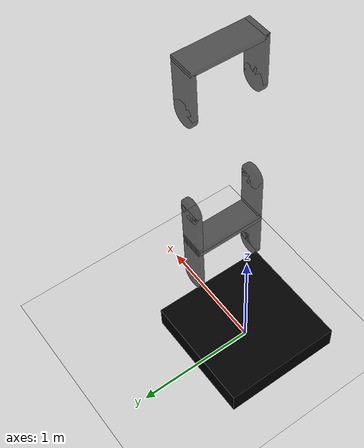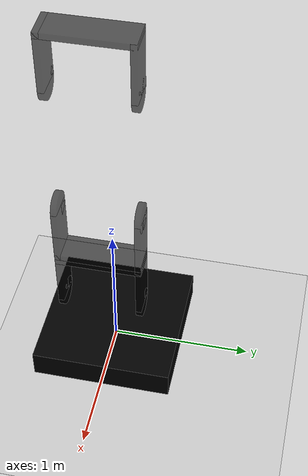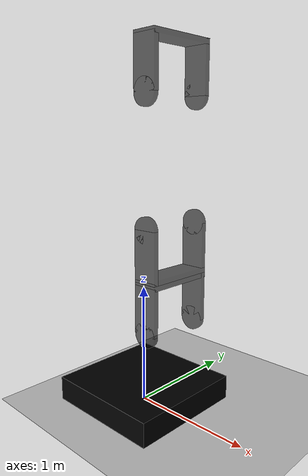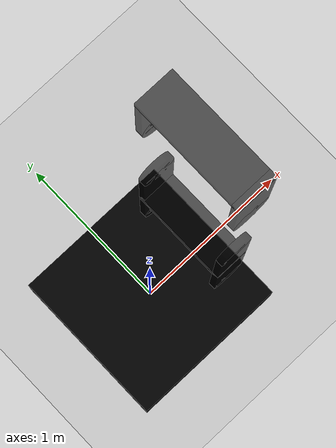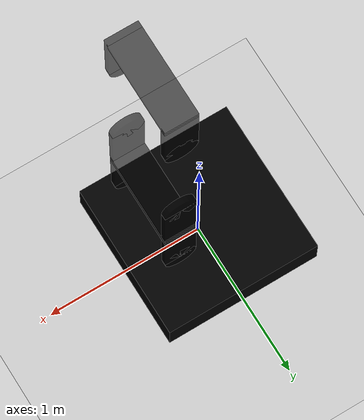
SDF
<?xml version="1.0" ?>
<sdf version="1.5">
  <world name="default">
    <!-- A global light source -->
    <include>
      <uri>model://sun</uri>
    </include>
    <!-- A ground plane -->
    <include>
      <uri>model://ground_plane</uri>
    </include>

    <!-- A testing model that includes the robotic arm model -->
    <model name="my_robot">
      <include>
        <uri>model://my_robot</uri>
      </include>

      <!-- Attach the plugin to this model -->
      <plugin name="roboarm_control" filename="libroboarm_plugin.so"/>
    </model>

  </world>
</sdf>

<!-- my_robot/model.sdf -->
<sdf version='1.4'>
  <model name="my_robot">
    <static>false</static>

    <link name='base'>
      <pose>0 0 0.1 0 0 0</pose>
      <inertial>
        <mass>1000</mass>
      </inertial>
      <!-- Main body shape and collision -->
      <collision name='collision'>
        <geometry>
          <box>
            <size>1 1 0.2</size>
          </box>
        </geometry>
      </collision>

      <visual name='visual'>
        <geometry>
          <box>
            <size>1 1 0.2</size>
          </box>
        </geometry>
        <material>
          <ambient>0 0 0 1</ambient>
        </material>
      </visual>
    </link>

    <!-- Add first bottom single servo -->
    <include>
      <uri>model://servo_single_joint</uri>
      <name>single_servo_0</name>
      <pose>0.2 0 0.4 0 0 0</pose>
    </include>
    <joint name="servo_single_0_joint" type="fixed">
      <child>single_servo_0::chassis</child>
      <parent>base</parent>
    </joint>

    <!-- Add first bottom double servo -->
    <include>
      <uri>model://servo_double_joint</uri>
      <name>double_servo_0</name>
      <pose>0.3 0 0.75 1.57 0 3.15</pose>
    </include>
    <joint name="servo_single_0_servo_double_0_joint" type="fixed">
      <child>double_servo_0::chassis</child>
      <parent>single_servo_0::holder</parent>
    </joint>

    <!-- Add double servo bracket -->
    <include>
      <uri>model://servo_connection_bracket</uri>
      <name>bracket_0</name>      <!-- Add name to make multiple add possible -->
      <!--
          0.75 =
          0.2 is base size
        + 0.4 is first servo size
        + 0.05 is first servo holder size
        + 0.1 is 1/2 of second servo horizontal size
        -->
      <pose>0.3 0 0.75 1.57 -1.57 0</pose>
    </include>
    <joint name="servo_double_0_bracket_0_joint" type="fixed">
      <child>bracket_0::bracket</child>
      <parent>double_servo_0::holder</parent>
    </joint>
    <include>
      <uri>model://servo_connection_bracket</uri>
      <name>bracket_1</name>      <!-- Add name to make multiple add possible -->
      <pose>0.3 0 1.55 1.57 1.57 0</pose>
    </include>
    <joint name="bracket_0_bracket_1_joint" type="fixed">
      <child>bracket_1::bracket</child>
      <parent>bracket_0::bracket</parent>
    </joint>

    <!-- Add double servo at the bracket end -->
    <include>
      <uri>model://servo_double_joint</uri>
      <name>double_servo_1</name>
      <pose>0.3 0 1.55 1.57 4.71 0</pose>
    </include>
    <joint name="servo_double_1_bracket_1_joint" type="fixed">
      <child>double_servo_1::holder</child>
      <parent>bracket_1::bracket</parent>
    </joint>

    <!-- Add pipe connector -->
    <include>
      <uri>model://servo_connection_pipe</uri>
      <name>pipe_0</name>
      <pose>0.3 0 2.03 0 0 0</pose>
    </include>
    <joint name="servo_double_1_pipe_0_joint" type="fixed">
      <child>pipe_0::pipe</child>
      <parent>double_servo_1::chassis</parent>
    </joint>

    <!-- Add double servo at the pipe connector end -->
    <include>
      <uri>model://servo_double_joint</uri>
      <name>double_servo_2</name>
      <pose>0.3 0 2.51 1.57 4.71 0</pose>
    </include>
    <joint name="pipe_0_servo_double_2_joint" type="fixed">
      <child>double_servo_2::chassis</child>
      <parent>pipe_0::pipe</parent>
    </joint>

    <!-- Add double servo bracket -->
    <include>
      <uri>model://servo_connection_bracket</uri>
      <name>bracket_2</name>
      <pose>0.3 0 2.51 1.57 -1.57 0</pose>
    </include>
    <joint name="servo_double_2_bracket_2_joint" type="fixed">
      <child>bracket_2::bracket</child>
      <parent>double_servo_2::holder</parent>
    </joint>

    <!-- Add last single servo -> manipulator wrist -->
    <include>
      <uri>model://servo_single_joint</uri>
      <name>single_servo_1</name>
      <pose>0.3 0 3.11 0 0 1.57</pose>
    </include>
    <joint name="bracket_2_single_servo_1_joint" type="fixed">
      <child>single_servo_1::chassis</child>
      <parent>bracket_2::bracket</parent>
    </joint>

  </model>
</sdf>

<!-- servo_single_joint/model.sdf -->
<sdf version='1.4'>
  <model name="servo_single_joint">
    <static>false</static>
    <link name='chassis'>
      <gravity>0</gravity>
      <pose>0 0 0 0 0 0</pose>
      <inertial>
        <mass>1</mass>
      </inertial>
      <!-- Main body shape and collision -->
      <collision name='collision'>
        <geometry>
          <box>
            <size>0.5 0.2 0.4</size>
          </box>
        </geometry>
      </collision>

      <visual name='visual'>
        <geometry>
          <box>
            <size>0.5 0.2 0.4</size>
          </box>
        </geometry>
        <material>
          <ambient>0 124 73 0.77</ambient>
        </material>
      </visual>
    </link>

    <!-- Servo holder shape and collision -->
    <link name='holder'>
      <gravity>0</gravity>
      <pose>0.1 0 0.225 0 0 0</pose>
      <collision name='collision'>
        <geometry>
          <cylinder>
            <radius>0.08</radius>
            <length>0.05</length>
          </cylinder>
        </geometry>
      </collision>

      <visual name='visual'>
        <geometry>
          <cylinder>
            <radius>0.08</radius>
            <length>0.05</length>
          </cylinder>
        </geometry>
        <material>
          <ambient>0 50 73 0.77</ambient>
        </material>
      </visual>

      <!-- Servo holder block to see movement -->
    </link>

    <!-- Make the holder move -->
    <joint type="revolute" name="holder_rotation">
      <pose>0 0 0 0 0 0</pose>
      <child>holder</child>
      <parent>chassis</parent>
      <axis>
        <limit>
          <lower>-3.14</lower>
          <upper>3.14</upper>
        </limit>
        <xyz>0 0 1</xyz>
      </axis>
    </joint>
  </model>
</sdf>

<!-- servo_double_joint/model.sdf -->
<sdf version='1.4'>
  <model name="servo_double_joint">
    <static>false</static>
    <link name='chassis'>
      <gravity>0</gravity>
      <pose>0 0 0 0 0 0</pose>
      <inertial>
        <mass>1</mass>
      </inertial>
      <!-- Main body shape and collision -->
      <collision name='collision'>
        <geometry>
          <box>
            <size>0.5 0.2 0.4</size>
          </box>
        </geometry>
      </collision>

      <visual name='visual'>
        <geometry>
          <box>
            <size>0.5 0.2 0.4</size>
          </box>
        </geometry>
        <material>
          <ambient>0 124 73 0.77</ambient>
        </material>
      </visual>
    </link>

    <!-- Servo holder shape and collision -->
    <link name='holder'>
      <gravity>0</gravity>
      <pose>0 0 0 0 0 0</pose>
      <inertial>
        <mass>1</mass>
      </inertial>
      <collision name='collision'>
        <geometry>
          <cylinder>
            <radius>0.08</radius>
            <length>0.5</length>
          </cylinder>
        </geometry>
      </collision>

      <visual name='visual'>
        <geometry>
          <cylinder>
            <radius>0.08</radius>
            <length>0.5</length>
          </cylinder>
        </geometry>
        <material>
          <ambient>0 50 73 0.77</ambient>
        </material>
      </visual>

      <!-- Servo holder block to see movement -->
    </link>

    <!-- Make the holder move -->
    <joint type="revolute" name="holder_rotation">
      <pose>0 0 0 0 0 0</pose>
      <child>holder</child>
      <parent>chassis</parent>
      <axis>
        <limit>
          <lower>-3.14</lower>
          <upper>3.14</upper>
        </limit>
        <xyz>0 0 1</xyz>
      </axis>
    </joint>

  </model>
</sdf>

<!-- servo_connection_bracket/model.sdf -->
<sdf version='1.4'>
  <model name="servo_connection_bracket">
    <static>true</static>

    <link name='bracket'>
      <gravity>0</gravity>
      <pose>0 0 0 0 0 0</pose>
      <inertial>
        <mass>0.1</mass>
      </inertial>

      <!-- Left arm part -->
      <collision name='left_arm_collision'>
        <!--
          0.27 =
          0.2 is 1/2 servo Z
        + 0.02 is 1/2 of bracket Z
        + 0.05 is 1/2 holder out of servo
        -->
        <pose>0.2 0 0.27 0 0 0</pose>
        <geometry>
          <box>
            <size>0.4 0.2 0.04</size>
          </box>
        </geometry>
      </collision>

      <visual name='left_arm_visual'>
        <pose>0.2 0 0.27 0 0 0</pose>
        <geometry>
          <box>
            <size>0.4 0.2 0.04</size>
          </box>
        </geometry>
        <material>
          <ambient>0 0 0 0.6</ambient>
        </material>
      </visual>

      <!-- Left arm mount circle -->
      <collision name='left_arm_mount_collision'>
        <pose>0 0 0.27 0 0 0</pose>
        <geometry>
          <cylinder>
            <radius>0.1</radius>
            <length>0.04</length>
          </cylinder>
        </geometry>
      </collision>

      <visual name='left_arm_mount_visual'>
        <pose>0 0 0.27 0 0 0</pose>
        <geometry>
          <cylinder>
            <radius>0.1</radius>
            <length>0.04</length>
          </cylinder>
        </geometry>
        <material>
          <ambient>0 0 0 0.6</ambient>
        </material>
      </visual>

      <!-- Right arm part -->
      <collision name='right_arm_collision'>
        <!--
          0.27 =
          0.2 is 1/2 servo Z
        + 0.02 is 1/2 of bracket Z
        + 0.05 is 1/2 holder out of servo
        -->
        <pose>0.2 0 -0.27 0 0 0</pose>
        <geometry>
          <box>
            <size>0.4 0.2 0.04</size>
          </box>
        </geometry>
      </collision>

      <visual name='right_arm_visual'>
        <pose>0.2 0 -0.27 0 0 0</pose>
        <geometry>
          <box>
            <size>0.4 0.2 0.04</size>
          </box>
        </geometry>
        <material>
          <ambient>0 0 0 0.6</ambient>
        </material>
      </visual>

      <!-- Right arm mount circle -->
      <collision name='right_arm_mount_collision'>
        <pose>0 0 -0.27 0 0 0</pose>
        <geometry>
          <cylinder>
            <radius>0.1</radius>
            <length>0.04</length>
          </cylinder>
        </geometry>
      </collision>

      <visual name='right_arm_mount_visual'>
        <pose>0 0 -0.27 0 0 0</pose>
        <geometry>
          <cylinder>
            <radius>0.1</radius>
            <length>0.04</length>
          </cylinder>
        </geometry>
        <material>
          <ambient>0 0 0 0.6</ambient>
        </material>
      </visual>

      <!-- Middle part -->
      <collision name='middle_bar_collision'>
        <!--
        0.38 =
        0.4 is arm size
        - 0.02 is 1/2 of middle bar Z size
        -->
        <pose>0.38 0 0 0 1.57 0</pose>
        <geometry>
          <box>
            <size>0.58 0.2 0.04</size>
          </box>
        </geometry>
      </collision>

      <visual name='middle_bar_visual'>
        <pose>0.38 0 0 0 1.57 0</pose>
        <geometry>
          <box>
            <!--
            0.58 =
            0.5 from servo holder height
            + 0.08 is 2 * 0.04 holder arms Z
            -->
            <size>0.58 0.2 0.04</size>
          </box>
        </geometry>
        <material>
          <ambient>0 0 0 0.6</ambient>
        </material>
      </visual>

    </link>
  </model>
</sdf>

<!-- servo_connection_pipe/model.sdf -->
<sdf version='1.4'>
  <model name="servo_connection_pipe">
    <static>false</static>

    <link name='pipe'>
      <gravity>0</gravity>
      <pose>0 0 0 0 0 0</pose>
      <inertial>
        <mass>0.1</mass>
      </inertial>
      <!-- Middle pipe element -->
      <collision name='collision'>
        <geometry>
          <cylinder>
            <radius>0.07</radius>
            <length>0.4</length>
          </cylinder>
        </geometry>
      </collision>

      <visual name='visual'>
        <geometry>
          <cylinder>
            <radius>0.07</radius>
            <length>0.4</length>
          </cylinder>
        </geometry>
        <material>          <!-- middle pipe color -->
          <ambient>0 0 175 0.3</ambient>
        </material>
      </visual>

      <!-- First cylinder element -->
      <collision name='cylinder_0_collision'>
        <pose>0 0 0.215 0 0 0</pose>
        <geometry>
          <cylinder>
            <radius>0.08</radius>
            <length>0.03</length>
          </cylinder>
        </geometry>
      </collision>

      <visual name='cylinder_0_visual'>
        <pose>0 0 0.215 0 0 0</pose>
        <geometry>
          <cylinder>
            <radius>0.08</radius>
            <length>0.03</length>
          </cylinder>
        </geometry>
        <material>          <!-- upper pipe color -->
          <ambient>0 0 175 0.3</ambient>
        </material>
      </visual>

      <!-- First cylinder element -->
      <collision name='cylinder_1_collision'>
        <pose>0 0 -0.215 0 0 0</pose>
        <geometry>
          <cylinder>
            <radius>0.08</radius>
            <length>0.03</length>
          </cylinder>
        </geometry>
      </collision>

      <visual name='cylinder_1_visual'>
        <pose>0 0 -0.215 0 0 0</pose>
        <geometry>
          <cylinder>
            <radius>0.08</radius>
            <length>0.03</length>
          </cylinder>
        </geometry>
        <material>          <!-- lower pipe color -->
          <ambient>0 0 175 0.3</ambient>
        </material>
      </visual>
    </link>
  </model>
</sdf>
